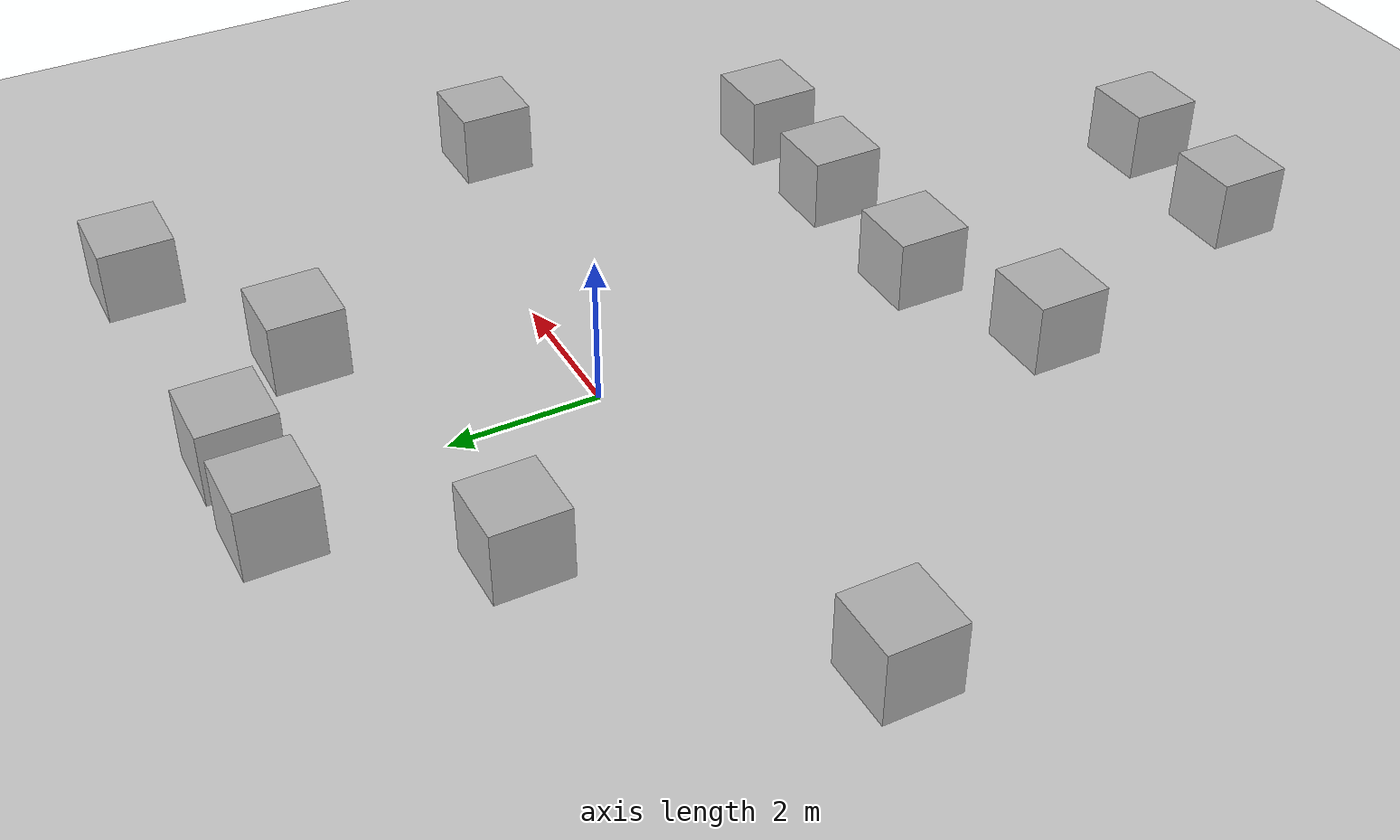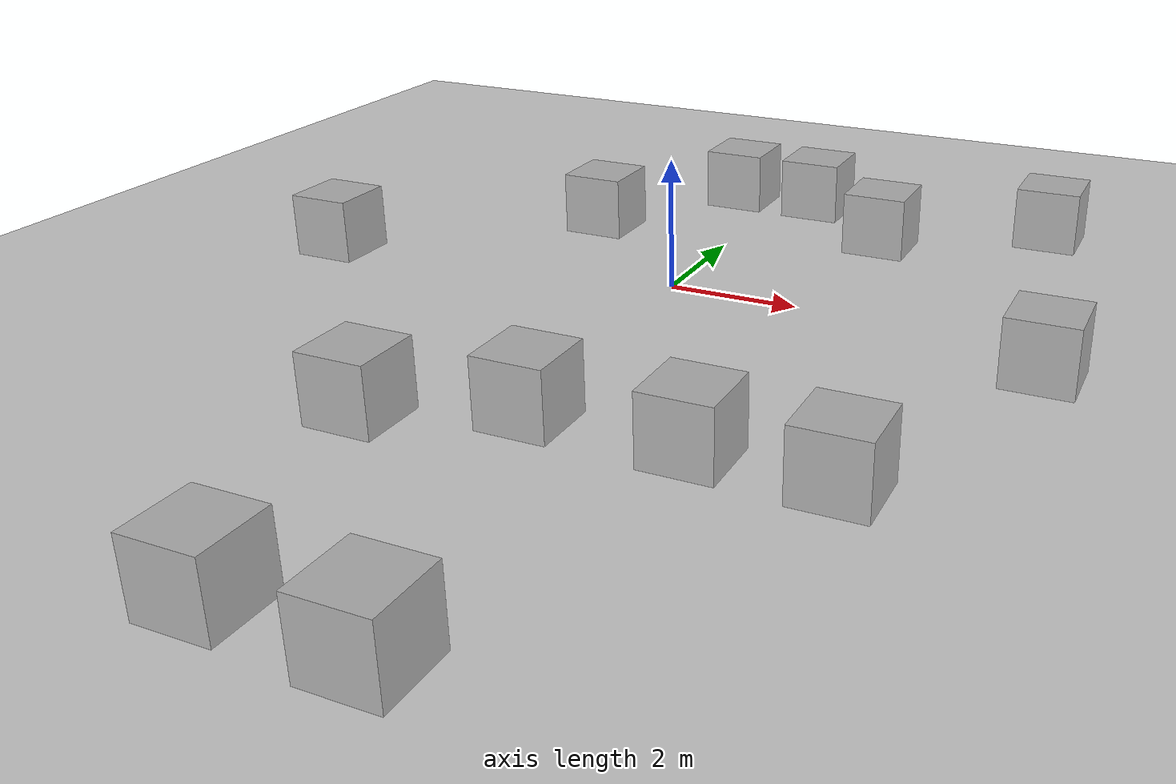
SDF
<sdf version="1.9">
 <world name="my_world2">
  <physics name="1ms" type="ignored">
   <max_step_size>0.001</max_step_size>
   <real_time_factor>1</real_time_factor>
   <real_time_update_rate>1000</real_time_update_rate>
  </physics>
  <plugin name="gz::sim::systems::Physics" filename="gz-sim-physics-system"/>
  <plugin name="gz::sim::systems::UserCommands" filename="gz-sim-user-commands-system"/>
  <plugin name="gz::sim::systems::SceneBroadcaster" filename="gz-sim-scene-broadcaster-system"/>
  <plugin name="gz::sim::systems::Contact" filename="gz-sim-contact-system"/>
  <gravity>0 0 -9.8</gravity>
  <magnetic_field>6e-06 2.3e-05 -4.2e-05</magnetic_field>
  <atmosphere type="adiabatic"/>
  <scene><ambient>0.4 0.4 0.4 1</ambient><background>0.7 0.7 0.7 1</background><shadows>true</shadows></scene>
  <model name="ground_plane">
   <static>true</static>
   <link name="link">
    <collision name="collision">
     <geometry><plane><normal>0 0 1</normal><size>100 100</size></plane></geometry>
    </collision>
    <visual name="visual">
     <geometry><plane><normal>0 0 1</normal><size>100 100</size></plane></geometry>
     <material>
      <ambient>0.8 0.8 0.8 1</ambient>
      <diffuse>0.8 0.8 0.8 1</diffuse>
      <specular>0.8 0.8 0.8 1</specular>
     </material>
    </visual>
    <inertial>
     <mass>1</mass>
     <inertia><ixx>1</ixx><ixy>0</ixy><ixz>0</ixz><iyy>1</iyy><iyz>0</iyz><izz>1</izz></inertia>
    </inertial>
   </link>
  </model>
  <model name="box">
   <pose>4.87366 4.42917 0.5 0 0 0</pose>
   <link name="box_link">
    <inertial>
     <inertia><ixx>0.16666</ixx><ixy>0</ixy><ixz>0</ixz><iyy>0.16666</iyy><iyz>0</iyz><izz>0.16666</izz></inertia>
     <mass>1</mass>
    </inertial>
    <collision name="box_collision"><geometry><box><size>1 1 1</size></box></geometry></collision>
    <visual name="box_visual">
     <geometry><box><size>1 1 1</size></box></geometry>
     <material>
      <ambient>0.3 0.3 0.3 1</ambient>
      <diffuse>0.7 0.7 0.7 1</diffuse>
      <specular>1 1 1 1</specular>
     </material>
    </visual>
   </link>
   <static>false</static>
  </model>
  <model name="box_0">
   <pose>0.798467 4.37179 0.5 0 0 0</pose>
   <link name="box_link">
    <inertial>
     <inertia><ixx>0.16666</ixx><ixy>0</ixy><ixz>0</ixz><iyy>0.16666</iyy><iyz>0</iyz><izz>0.16666</izz></inertia>
     <mass>1</mass>
    </inertial>
    <collision name="box_collision"><geometry><box><size>1 1 1</size></box></geometry></collision>
    <visual name="box_visual">
     <geometry><box><size>1 1 1</size></box></geometry>
     <material>
      <ambient>0.3 0.3 0.3 1</ambient>
      <diffuse>0.7 0.7 0.7 1</diffuse>
      <specular>1 1 1 1</specular>
     </material>
    </visual>
   </link>
   <static>false</static>
  </model>
  <model name="box_1">
   <pose>0.315299 -4.74868 0.499999 0 -0 0</pose>
   <link name="box_link">
    <inertial>
     <inertia><ixx>0.16666</ixx><ixy>0</ixy><ixz>0</ixz><iyy>0.16666</iyy><iyz>0</iyz><izz>0.16666</izz></inertia>
     <mass>1</mass>
    </inertial>
    <collision name="box_collision"><geometry><box><size>1 1 1</size></box></geometry></collision>
    <visual name="box_visual">
     <geometry><box><size>1 1 1</size></box></geometry>
     <material>
      <ambient>0.3 0.3 0.3 1</ambient>
      <diffuse>0.7 0.7 0.7 1</diffuse>
      <specular>1 1 1 1</specular>
     </material>
    </visual>
   </link>
   <static>false</static>
  </model>
  <model name="box_2">
   <pose>5.82733 -0.987227 0.5 -0 0 -0</pose>
   <link name="box_link">
    <inertial>
     <inertia><ixx>0.16666</ixx><ixy>0</ixy><ixz>0</ixz><iyy>0.16666</iyy><iyz>0</iyz><izz>0.16666</izz></inertia>
     <mass>1</mass>
    </inertial>
    <collision name="box_collision"><geometry><box><size>1 1 1</size></box></geometry></collision>
    <visual name="box_visual">
     <geometry><box><size>1 1 1</size></box></geometry>
     <material>
      <ambient>0.3 0.3 0.3 1</ambient>
      <diffuse>0.7 0.7 0.7 1</diffuse>
      <specular>1 1 1 1</specular>
     </material>
    </visual>
   </link>
   <static>false</static>
  </model>
  <model name="box_3">
   <pose>4.35726 -4.84403 0.5 0 0 -0</pose>
   <link name="box_link">
    <inertial>
     <inertia><ixx>0.16666</ixx><ixy>0</ixy><ixz>0</ixz><iyy>0.16666</iyy><iyz>0</iyz><izz>0.16666</izz></inertia>
     <mass>1</mass>
    </inertial>
    <collision name="box_collision"><geometry><box><size>1 1 1</size></box></geometry></collision>
    <visual name="box_visual">
     <geometry><box><size>1 1 1</size></box></geometry>
     <material>
      <ambient>0.3 0.3 0.3 1</ambient>
      <diffuse>0.7 0.7 0.7 1</diffuse>
      <specular>1 1 1 1</specular>
     </material>
    </visual>
   </link>
   <static>false</static>
  </model>
  <model name="box_4">
   <pose>2.38352 3.01071 0.5 0 0 -0</pose>
   <link name="box_link">
    <inertial>
     <inertia><ixx>0.16666</ixx><ixy>0</ixy><ixz>0</ixz><iyy>0.16666</iyy><iyz>0</iyz><izz>0.16666</izz></inertia>
     <mass>1</mass>
    </inertial>
    <collision name="box_collision"><geometry><box><size>1 1 1</size></box></geometry></collision>
    <visual name="box_visual">
     <geometry><box><size>1 1 1</size></box></geometry>
     <material>
      <ambient>0.3 0.3 0.3 1</ambient>
      <diffuse>0.7 0.7 0.7 1</diffuse>
      <specular>1 1 1 1</specular>
     </material>
    </visual>
   </link>
   <static>false</static>
  </model>
  <model name="box_5">
   <pose>-5.68497 -0.703077 0.5 0 0 -0</pose>
   <link name="box_link">
    <inertial>
     <inertia><ixx>0.16666</ixx><ixy>0</ixy><ixz>0</ixz><iyy>0.16666</iyy><iyz>0</iyz><izz>0.16666</izz></inertia>
     <mass>1</mass>
    </inertial>
    <collision name="box_collision"><geometry><box><size>1 1 1</size></box></geometry></collision>
    <visual name="box_visual">
     <geometry><box><size>1 1 1</size></box></geometry>
     <material>
      <ambient>0.3 0.3 0.3 1</ambient>
      <diffuse>0.7 0.7 0.7 1</diffuse>
      <specular>1 1 1 1</specular>
     </material>
    </visual>
   </link>
   <static>false</static>
  </model>
  <model name="box_6">
   <pose>-1.64558 -5.51176 0.5 0 0 -0</pose>
   <link name="box_link">
    <inertial>
     <inertia><ixx>0.16666</ixx><ixy>0</ixy><ixz>0</ixz><iyy>0.16666</iyy><iyz>0</iyz><izz>0.16666</izz></inertia>
     <mass>1</mass>
    </inertial>
    <collision name="box_collision"><geometry><box><size>1 1 1</size></box></geometry></collision>
    <visual name="box_visual">
     <geometry><box><size>1 1 1</size></box></geometry>
     <material>
      <ambient>0.3 0.3 0.3 1</ambient>
      <diffuse>0.7 0.7 0.7 1</diffuse>
      <specular>1 1 1 1</specular>
     </material>
    </visual>
   </link>
   <static>false</static>
  </model>
  <model name="box_7">
   <pose>-0.622924 4.38038 0.5 0 0 0</pose>
   <link name="box_link">
    <inertial>
     <inertia><ixx>0.16666</ixx><ixy>0</ixy><ixz>0</ixz><iyy>0.16666</iyy><iyz>0</iyz><izz>0.16666</izz></inertia>
     <mass>1</mass>
    </inertial>
    <collision name="box_collision"><geometry><box><size>1 1 1</size></box></geometry></collision>
    <visual name="box_visual">
     <geometry><box><size>1 1 1</size></box></geometry>
     <material>
      <ambient>0.3 0.3 0.3 1</ambient>
      <diffuse>0.7 0.7 0.7 1</diffuse>
      <specular>1 1 1 1</specular>
     </material>
    </visual>
   </link>
   <static>false</static>
  </model>
  <model name="box_8">
   <pose>1.50079 -9.45999 0.5 -0 0 0</pose>
   <link name="box_link">
    <inertial>
     <inertia><ixx>0.16666</ixx><ixy>0</ixy><ixz>0</ixz><iyy>0.16666</iyy><iyz>0</iyz><izz>0.16666</izz></inertia>
     <mass>1</mass>
    </inertial>
    <collision name="box_collision"><geometry><box><size>1 1 1</size></box></geometry></collision>
    <visual name="box_visual">
     <geometry><box><size>1 1 1</size></box></geometry>
     <material>
      <ambient>0.3 0.3 0.3 1</ambient>
      <diffuse>0.7 0.7 0.7 1</diffuse>
      <specular>1 1 1 1</specular>
     </material>
    </visual>
   </link>
   <static>false</static>
  </model>
  <model name="box_9">
   <pose>-0.499968 -9.35341 0.5 -0 0 -0</pose>
   <link name="box_link">
    <inertial>
     <inertia><ixx>0.16666</ixx><ixy>0</ixy><ixz>0</ixz><iyy>0.16666</iyy><iyz>0</iyz><izz>0.16666</izz></inertia>
     <mass>1</mass>
    </inertial>
    <collision name="box_collision"><geometry><box><size>1 1 1</size></box></geometry></collision>
    <visual name="box_visual">
     <geometry><box><size>1 1 1</size></box></geometry>
     <material>
      <ambient>0.3 0.3 0.3 1</ambient>
      <diffuse>0.7 0.7 0.7 1</diffuse>
      <specular>1 1 1 1</specular>
     </material>
    </visual>
   </link>
   <static>false</static>
  </model>
  <model name="box_10">
   <pose>2.52072 -4.79263 0.5 0 0 -0</pose>
   <link name="box_link">
    <inertial>
     <inertia><ixx>0.16666</ixx><ixy>0</ixy><ixz>0</ixz><iyy>0.16666</iyy><iyz>0</iyz><izz>0.16666</izz></inertia>
     <mass>1</mass>
    </inertial>
    <collision name="box_collision"><geometry><box><size>1 1 1</size></box></geometry></collision>
    <visual name="box_visual">
     <geometry><box><size>1 1 1</size></box></geometry>
     <material>
      <ambient>0.3 0.3 0.3 1</ambient>
      <diffuse>0.7 0.7 0.7 1</diffuse>
      <specular>1 1 1 1</specular>
     </material>
    </visual>
   </link>
   <static>false</static>
  </model>
  <model name="box_11">
   <pose>-2.2494 2.09614 0.5 0 -0 0</pose>
   <link name="box_link">
    <inertial>
     <inertia><ixx>0.16666</ixx><ixy>0</ixy><ixz>0</ixz><iyy>0.16666</iyy><iyz>0</iyz><izz>0.16666</izz></inertia>
     <mass>1</mass>
    </inertial>
    <collision name="box_collision"><geometry><box><size>1 1 1</size></box></geometry></collision>
    <visual name="box_visual">
     <geometry><box><size>1 1 1</size></box></geometry>
     <material>
      <ambient>0.3 0.3 0.3 1</ambient>
      <diffuse>0.7 0.7 0.7 1</diffuse>
      <specular>1 1 1 1</specular>
     </material>
    </visual>
   </link>
   <static>false</static>
  </model>
  <light name="sun" type="directional">
   <pose>0 0 10 0 -0 0</pose>
   <intensity>1</intensity>
   <direction>-0.5 0.1 -0.9</direction>
   <diffuse>0.8 0.8 0.8 1</diffuse>
   <specular>0.2 0.2 0.2 1</specular>
   <attenuation>
    <range>1000</range>
    <linear>0.01</linear>
    <constant>0.90000000000000002</constant>
    <quadratic>0.001</quadratic>
   </attenuation>
   <spot><inner_angle>0</inner_angle><outer_angle>0</outer_angle><falloff>0</falloff></spot>
  </light>
 </world>
</sdf>
